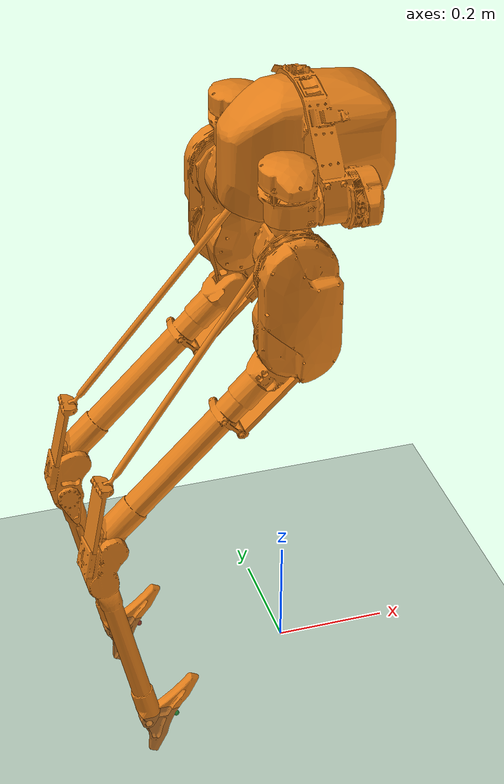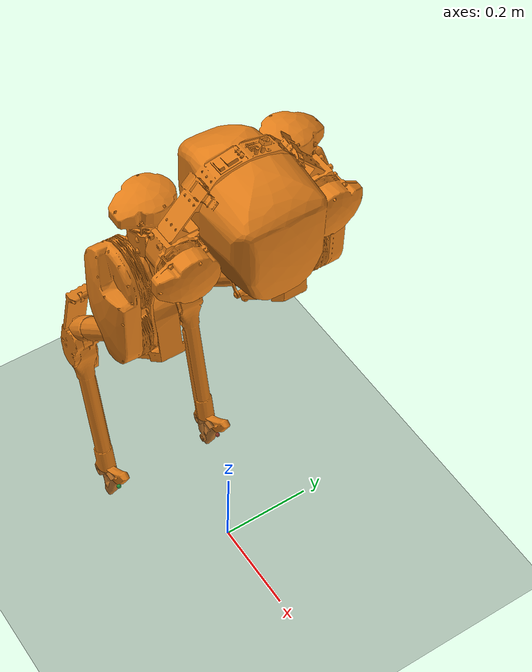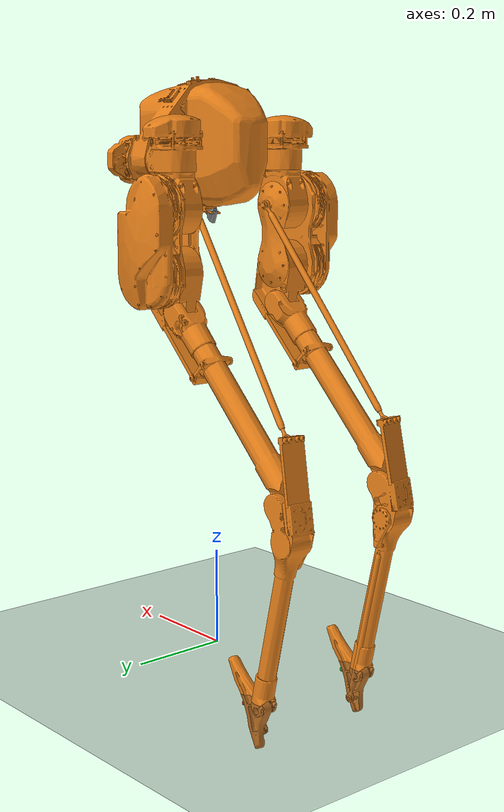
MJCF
<?xml version="1.0" encoding="UTF-8"?>
<mujoco model="cassie">
    <compiler inertiafromgeom="auto" angle="degree" eulerseq="zyx" meshdir="cassie-stl-meshes"/>
    <size nuser_actuator="1" nuser_sensor="1" nuser_geom="1"/>
    <option timestep="0.0005" iterations="50" solver="PGS" gravity="0 0 -9.81"/>
    <visual>
        <quality shadowsize="4096"/>
        <map znear="0.05"/>
    </visual>
    <default>
        <joint limited="true"/>
        <motor ctrllimited="true"/>
        <geom contype="0" conaffinity="0" condim="1" solref="0.005 1"/>
        <equality solref="0.002 1"/>
        <default class="cassie">
            <geom material="cassie"/>
        </default>
        <default class="collision">
            <geom material="collision" contype="1" user="2"/>
            <default class="collision-left">
                <geom contype="2" conaffinity="4"/>
            </default>
            <default class="collision-right">
                <geom contype="4" conaffinity="2"/>
            </default>
        </default>
        <default class="obstacle">
            <geom material="obstacle" condim="3" contype="8" conaffinity="15" user="1"/>
        </default>
    </default>
    <asset>
        <texture type="skybox" builtin="gradient" width="128" height="128" rgb1="0.4 0.6 0.8" rgb2="0 0 0"/>
        <texture type="2d" builtin="checker" width="512" height="512" rgb1="0.2 0.2 0.2" rgb2="0.3 0.3 0.3" name="plane"/>
        <material name="plane" reflectance="0" texture="plane" texrepeat="1 1" texuniform="true"/>
        <material name="cassie" rgba="0.9 0.5 0.1 1"/>
        <material name="collision" rgba="0.1 0.5 0.9 0"/>
        <material name="obstacle" rgba="0.2 0.6 0.2 1"/>
        <mesh name="cassie-pelvis" file="pelvis.stl"/>
        <mesh name="left-hip-roll" file="hip-roll.stl"/>
        <mesh name="left-hip-yaw" file="hip-yaw.stl"/>
        <mesh name="left-hip-pitch" file="hip-pitch.stl"/>
        <mesh name="left-achilles-rod" file="achilles-rod.stl"/>
        <mesh name="left-knee" file="knee.stl"/>
        <mesh name="left-knee-spring" file="knee-spring.stl"/>
        <mesh name="left-shin" file="shin.stl"/>
        <mesh name="left-tarsus" file="tarsus.stl"/>
        <mesh name="left-heel-spring" file="heel-spring.stl"/>
        <mesh name="left-foot-crank" file="foot-crank.stl"/>
        <mesh name="left-plantar-rod" file="plantar-rod.stl"/>
        <mesh name="left-foot" file="foot.stl"/>
        <mesh name="right-hip-roll" file="hip-roll.stl" scale="1 -1 1"/>
        <mesh name="right-hip-yaw" file="hip-yaw.stl" scale="1 -1 1"/>
        <mesh name="right-hip-pitch" file="hip-pitch.stl" scale="1 1 -1"/>
        <mesh name="right-achilles-rod" file="achilles-rod.stl" scale="1 1 -1"/>
        <mesh name="right-knee" file="knee.stl" scale="1 1 -1"/>
        <mesh name="right-knee-spring" file="knee-spring.stl" scale="1 1 -1"/>
        <mesh name="right-shin" file="shin.stl" scale="1 1 -1"/>
        <mesh name="right-tarsus" file="tarsus.stl" scale="1 1 -1"/>
        <mesh name="right-heel-spring" file="heel-spring.stl" scale="1 1 -1"/>
        <mesh name="right-foot-crank" file="foot-crank.stl" scale="1 1 -1"/>
        <mesh name="right-plantar-rod" file="plantar-rod.stl" scale="1 1 -1"/>
        <mesh name="right-foot" file="foot.stl" scale="1 1 -1"/>
    </asset>
    <worldbody>
        <geom name="floor" pos="0.001 0 0" size="100 100 .125" type="plane" material="plane" condim="3" conaffinity="15"/>
        <camera name="fixed" pos="3.5 -4 .8" zaxis="0 -1 0" mode="fixed"/>
        <light mode="trackcom" diffuse="0.2 0.2 0.2" pos="0 0 10" dir="0 0 -1" castshadow="true"/>
        <light directional="true" specular="0 0 0"/>
        <body name="cassie-pelvis" pos="0 0 1" childclass="cassie">
            <camera name="track" pos="0 -3 1" zaxis="0 -1 0.5" mode="track"/>
            <inertial pos="0.05066    0.000346     0.02841" mass="10.33" fullinertia="0.085821    0.049222     0.08626   1.276e-05 -0.00016022   -0.000414"/>
            <joint type="slide" axis="1 0 0" limited="false"/>
            <joint type="slide" axis="0 1 0" limited="false"/>
            <joint type="slide" axis="0 0 1" limited="false" ref="1.01"/>
            <joint type="ball" limited="false"/>
            <geom type="mesh" mesh="cassie-pelvis"/>
            <geom type="sphere" size="0.15" pos="0.02 0 0.02" class="collision"/>
            <site name="imu" size="0.01" pos="0.03155 0 -0.07996"/>
            <site name="range1" size="0.005 0.1 0.005" type="cylinder" rgba="0.5 0.5 0.5 1" fromto="0 0 -0.1 0.02452 0 -0.10488"/>
            <site name="range2" size="0.005 0.1 0.005" type="cylinder" rgba="0.5 0.5 0.5 1" fromto="0 0 -0.1 0.02031 0 -0.10957"/>
            <site name="range3" size="0.005 0.1 0.005" type="cylinder" rgba="0.5 0.5 0.5 1" fromto="0 0 -0.1 0.02079 0 -0.11389"/>
            <site name="range4" size="0.005 0.1 0.005" type="cylinder" rgba="0.5 0.5 0.5 1" fromto="0 0 -0.1 0.01768 0 -0.11768"/>
            <site name="range5" size="0.005 0.1 0.005" type="cylinder" rgba="0.5 0.5 0.5 1" fromto="0 0 -0.1 0.01389 0 -0.12079"/>
            <site name="range6" size="0.005 0.1 0.005" type="cylinder" rgba="0.5 0.5 0.5 1" fromto="0 0 -0.1 0.00957 0 -0.12310"/>
            <body name="left-hip-roll" pos="0.021 0.135 0" xyaxes="0 0 -1 0 1 0">
                <inertial pos="-0.01793 0.0001 -0.04428" mass="1.82" fullinertia="0.003431 0.003793 0.002135 -6.65e-07 -0.00084 3.99e-06"/>
                <joint name="left-hip-roll" type="hinge" range="-15 22.5" damping="1" armature="0.038125"/>
                <geom type="mesh" mesh="left-hip-roll"/>
                <body name="left-hip-yaw" pos="0 0 -0.07" xyaxes="0 0 1 0 1 0">
                    <inertial pos="0 -1e-05 -0.034277" mass="1.171" fullinertia="0.002443 0.002803 0.000842 -4e-08 2.462e-07 -2.71e-08"/>
                    <joint name="left-hip-yaw" type="hinge" range="-22.5 22.5" damping="1" armature="0.038125"/>
                    <geom type="mesh" mesh="left-hip-yaw"/>
                    <body name="left-hip-pitch" pos="0 0 -0.09" xyaxes="0 0 -1 1 0 0">
                        <inertial pos="0.05946 5e-05 -0.03581" mass="5.52" fullinertia="0.010898 0.029714 0.030257 -0.0002669 -5.721e-05 9.17e-06"/>
                        <joint name="left-hip-pitch" type="hinge" range="-50 80" damping="1" armature="0.09344"/>
                        <geom type="mesh" mesh="left-hip-pitch"/>
                        <geom type="capsule" size="0.08" fromto="0 0 -0.04 0.12 0 -0.0355" class="collision"/>
                        <body name="left-achilles-rod" pos="0 0 0.045" xyaxes="0.7922 -0.60599 -0.072096 0.60349 0.79547 -0.054922">
                            <inertial pos="0.24719 0 0" mass="0.39175" fullinertia="9.385e-06    0.011217     0.01122   -9.35e-08  -4.025e-08           0"/>
                            <joint name="left-achilles-rod" type="ball" limited="false" damping="0.01"/>
                            <geom type="mesh" mesh="left-achilles-rod"/>
                        </body>
                        <body name="left-knee" pos="0.12 0 0.0045" xyaxes="0.70711 -0.70711 0 0.70711 0.70711 0">
                            <inertial pos="0.023 0.03207 -0.002181" mass="1.8945" fullinertia="0.00344   0.0025837   0.0054093  -0.0009936 -0.00010212 -0.00013435"/>
                            <joint name="left-knee" type="hinge" ref="-45" range="-164 -37" damping="1" armature="0.09344"/>
                            <geom type="mesh" mesh="left-knee"/>
                            <body name="left-knee-spring" pos="0.06068 0.08241 0">
                                <inertial pos="0.0836 0.0034 0" mass="0.465" fullinertia="0.00013038   0.0010301  0.00091725  1.7175e-05           0           0"/>
                                <geom type="mesh" mesh="left-knee-spring"/>
                            </body>
                            <body name="left-shin" pos="0.06068 0.04741 0">
                                <inertial pos="0.18338 0.001169 0.0002123" mass="1.4425" fullinertia="0.00089848     0.03682    0.036768 -0.00052452   5.665e-05      -3e-07"/>
                                <geom type="mesh" mesh="left-shin"/>
                                <geom type="capsule" size="0.04" fromto="0 0 0 0.43476 0.02 0" class="collision-left"/>
                                <joint name="left-shin" type="hinge" range="-20 20" stiffness="1500" damping="20"/>
                                <body name="left-tarsus" pos="0.43476 0.02 0" xyaxes="0.52992 0.84805 0 -0.84805 0.52992 0">
                                    <inertial pos="0.11046 -0.03058 -0.00131" mass="1.955" fullinertia="0.00098095    0.033987    0.034185  0.00059128 -0.00012468  -1.205e-05"/>
                                    <joint name="left-tarsus" type="hinge" ref="58" range="50 170" damping="0.1"/>
                                    <geom type="mesh" mesh="left-tarsus"/>
                                    <geom type="capsule" size="0.04" fromto="-0.01269 -0.03059 0.00092 0.408 -0.04 0" class="collision-left"/>
                                    <body name="left-heel-spring" pos="-0.01269 -0.03059 0.00092" xyaxes="-0.91211 0.40829 0.036948 -0.40992 -0.90952 -0.068841">
                                        <inertial pos="0.081 0.0022 0" mass="0.315" fullinertia="7.3975e-05  0.00055577  0.00050175  1.7875e-05    -1.5e-06     2.5e-07"/>
                                        <joint name="left-heel-spring" type="hinge" limited="false" stiffness="1250" damping="20"/>
                                        <geom type="mesh" mesh="left-heel-spring"/>
                                    </body>
                                    <body name="left-foot-crank" pos="0.058 -0.034 0.02275">
                                        <inertial pos="0.00493 2e-05 -0.00215" mass="0.31525" fullinertia="6.7352e-05  0.00012405   0.0001584   -5.25e-09 -9.9058e-06  -2.725e-08"/>
                                        <joint name="left-foot-crank" type="hinge" range="-140 -30" damping="1"/>
                                        <geom type="mesh" mesh="left-foot-crank"/>
                                        <body name="left-plantar-rod" pos="0.055 0 -0.00791">
                                            <inertial pos="0.17792 0 0" mass="0.2965" fullinertia="6.9475e-06    0.004435   0.0044375   -5.85e-08  -2.025e-08           0"/>
                                            <joint name="left-plantar-rod" type="hinge" limited="false"/>
                                            <geom type="mesh" mesh="left-plantar-rod"/>
                                        </body>
                                    </body>
                                    <body name="left-foot" pos="0.408 -0.04 0">
                                        <inertial pos="0.00474 0.02748 -0.00014" mass="0.3745" fullinertia="0.0004347  0.00041982  0.00083153  0.00029535     3.4e-06      -1e-06"/>
                                        <joint name="left-foot" type="hinge" range="-140 -30" damping="1" armature="0.01225"/>
                                        <geom type="mesh" mesh="left-foot"/>
                                        <geom type="capsule" size="0.02" fromto="-0.052821 0.092622 0 0.069746 -0.010224 0" class="collision-left"/>
                                        <site name="left-foot-pt" type="sphere" pos="0.01965 0.05375 0" size="0.005" rgba="0.7 0.2 0.1 1"/>
                                    </body>
                                </body>
                            </body>
                        </body>
                    </body>
                </body>
            </body>
            <body name="right-hip-roll" pos="0.021 -0.135 0" xyaxes="0 0 -1 0 1 0">
                <inertial pos="-0.01793 0.0001 -0.04428" mass="1.82" fullinertia="0.003431 0.003793 0.002135 6.65e-07 -0.00084 -3.99e-06"/>
                <joint name="right-hip-roll" type="hinge" range="-22.5 15" damping="1" armature="0.038125"/>
                <geom type="mesh" mesh="right-hip-roll"/>
                <body name="right-hip-yaw" pos="0 0 -0.07" xyaxes="0 0 1 0 1 0">
                    <inertial pos="0 1e-05 -0.034277" mass="1.171" fullinertia="0.002443 0.002803 0.000842 4e-08 2.462e-07 2.71e-08"/>
                    <joint name="right-hip-yaw" type="hinge" range="-22.5 22.5" damping="1" armature="0.038125"/>
                    <geom type="mesh" mesh="right-hip-yaw"/>
                    <body name="right-hip-pitch" pos="0 0 -0.09" xyaxes="0 0 -1 1 0 0">
                        <inertial pos="0.05946 5e-05 0.03581" mass="5.52" fullinertia="0.010898 0.029714 0.030257 -0.0002669 5.721e-05 -9.17e-06"/>
                        <joint name="right-hip-pitch" type="hinge" range="-50 80" damping="1" armature="0.09344"/>
                        <geom type="mesh" mesh="right-hip-pitch"/>
                        <geom type="capsule" size="0.08" fromto="0 0 0.04 0.12 0 0.0355" class="collision"/>
                        <body name="right-achilles-rod" pos="0 0 -0.045" xyaxes="0.7922 -0.60599 0.072096 0.60349 0.79547 0.054922">
                            <inertial pos="0.24719 0 0" mass="0.39175" fullinertia="9.385e-06    0.011217     0.01122   -9.35e-08   4.025e-08           0"/>
                            <joint name="right-achilles-rod" type="ball" limited="false" damping="0.01"/>
                            <geom type="mesh" mesh="right-achilles-rod"/>
                        </body>
                        <body name="right-knee" pos="0.12 0 -0.0045" xyaxes="0.70711 -0.70711 0 0.70711 0.70711 0">
                            <inertial pos="0.023 0.03207 0.002181" mass="1.8945" fullinertia="0.00344   0.0025837   0.0054093  -0.0009936  0.00010212  0.00013435"/>
                            <joint name="right-knee" type="hinge" ref="-45" range="-164 -37" damping="1" armature="0.09344"/>
                            <geom type="mesh" mesh="right-knee"/>
                            <body name="right-knee-spring" pos="0.06068 0.08241 0">
                                <inertial pos="0.0836 0.0034 0" mass="0.465" fullinertia="0.00013038   0.0010301  0.00091725  1.7175e-05           0           0"/>
                                <geom type="mesh" mesh="right-knee-spring"/>
                            </body>
                            <body name="right-shin" pos="0.06068 0.04741 0">
                                <inertial pos="0.18338 0.001169 -0.0002123" mass="1.4425" fullinertia="0.00089848     0.03682    0.036768 -0.00052452  -5.665e-05       3e-07"/>
                                <geom type="mesh" mesh="right-shin"/>
                                <geom type="capsule" size="0.04" fromto="0 0 0 0.43476 0.02 0" class="collision-right"/>
                                <joint name="right-shin" type="hinge" range="-20 20" stiffness="1500" damping="20"/>
                                <body name="right-tarsus" pos="0.43476 0.02 0" xyaxes="0.52992 0.84805 0 -0.84805 0.52992 0">
                                    <inertial pos="0.11046 -0.03058 0.00131" mass="1.955" fullinertia="0.00098095    0.033987    0.034185  0.00059128  0.00012468   1.205e-05"/>
                                    <joint name="right-tarsus" type="hinge" ref="58" range="50 170" damping="0.1"/>
                                    <geom type="mesh" mesh="right-tarsus"/>
                                    <geom type="capsule" size="0.04" fromto="-0.01269 -0.03059 -0.00092 0.408 -0.04 0" class="collision-right"/>
                                    <body name="right-heel-spring" pos="-0.01269 -0.03059 -0.00092" xyaxes="-0.91211 0.40829 -0.036948 -0.40992 -0.90952 0.068841">
                                        <inertial pos="0.081 0.0022 0" mass="0.315" fullinertia="7.3975e-05  0.00055577  0.00050175  1.7875e-05     1.5e-06    -2.5e-07"/>
                                        <joint name="right-heel-spring" type="hinge" limited="false" stiffness="1250" damping="20"/>
                                        <geom type="mesh" mesh="right-heel-spring"/>
                                    </body>
                                    <body name="right-foot-crank" pos="0.058 -0.034 -0.02275">
                                        <inertial pos="0.00493 2e-05 0.00215" mass="0.31525" fullinertia="6.7352e-05  0.00012405   0.0001584   -5.25e-09  9.9058e-06   2.725e-08"/>
                                        <joint name="right-foot-crank" type="hinge" range="-140 -30" damping="1"/>
                                        <geom type="mesh" mesh="right-foot-crank"/>
                                        <body name="right-plantar-rod" pos="0.055 0 0.00791">
                                            <inertial pos="0.17792 0 0" mass="0.2965" fullinertia="6.9475e-06    0.004435   0.0044375   -5.85e-08   2.025e-08           0"/>
                                            <joint name="right-plantar-rod" type="hinge" limited="false"/>
                                            <geom type="mesh" mesh="right-plantar-rod"/>
                                        </body>
                                    </body>
                                    <body name="right-foot" pos="0.408 -0.04 0">
                                        <inertial pos="0.00474 0.02748 0.00014" mass="0.3745" fullinertia="0.0004347  0.00041982  0.00083153  0.00029535    -3.4e-06       1e-06"/>
                                        <joint name="right-foot" type="hinge" range="-140 -30" damping="1" armature="0.01225"/>
                                        <geom type="mesh" mesh="right-foot"/>
                                        <geom type="capsule" size="0.02" fromto="-0.052821 0.092622 0 0.069746 -0.010224 0" class="collision-right"/>
                                        <site name="right-foot-pt" type="sphere" pos="0.01965 0.05375 0" size="0.005" rgba="0.1 0.7 0.2 1"/>
                                    </body>
                                </body>
                            </body>
                        </body>
                    </body>
                </body>
            </body>
        </body>
    </worldbody>
    <equality>
        <connect name="left-plantar-rod-eq" body1="left-plantar-rod" body2="left-foot" anchor="0.35012 0 0"/>
        <connect name="left-achilles-rod-eq" body1="left-achilles-rod" body2="left-heel-spring" anchor="0.5012 0 0"/>
        <connect name="right-plantar-rod-eq" body1="right-plantar-rod" body2="right-foot" anchor="0.35012 0 0"/>
        <connect name="right-achilles-rod-eq" body1="right-achilles-rod" body2="right-heel-spring" anchor="0.5012 0 0"/>
    </equality>
    <equality>
        <joint name="rigid-left-shin" joint1="left-shin" polycoef="0 0 0 0 0"/>
        <joint name="rigid-right-shin" joint1="right-shin" polycoef="0 0 0 0 0"/>
        <joint name="rigid-left-heel-spring" joint1="left-heel-spring" polycoef="0 0 0 0 0"/>
        <joint name="rigid-right-heel-spring" joint1="right-heel-spring" polycoef="0 0 0 0 0"/>
    </equality>
    <actuator>
        <motor name="left-hip-roll" joint="left-hip-roll" gear="25" ctrllimited="true" ctrlrange="-4.5 4.5" user="2900"/>
        <motor name="left-hip-yaw" joint="left-hip-yaw" gear="25" ctrllimited="true" ctrlrange="-4.5 4.5" user="2900"/>
        <motor name="left-hip-pitch" joint="left-hip-pitch" gear="16" ctrllimited="true" ctrlrange="-12.2 12.2" user="1300"/>
        <motor name="left-knee" joint="left-knee" gear="16" ctrllimited="true" ctrlrange="-12.2 12.2" user="1300"/>
        <motor name="left-foot" joint="left-foot" gear="50" ctrllimited="true" ctrlrange="-0.9 0.9" user="5500"/>
        <motor name="right-hip-roll" joint="right-hip-roll" gear="25" ctrllimited="true" ctrlrange="-4.5 4.5" user="2900"/>
        <motor name="right-hip-yaw" joint="right-hip-yaw" gear="25" ctrllimited="true" ctrlrange="-4.5 4.5" user="2900"/>
        <motor name="right-hip-pitch" joint="right-hip-pitch" gear="16" ctrllimited="true" ctrlrange="-12.2 12.2" user="1300"/>
        <motor name="right-knee" joint="right-knee" gear="16" ctrllimited="true" ctrlrange="-12.2 12.2" user="1300"/>
        <motor name="right-foot" joint="right-foot" gear="50" ctrllimited="true" ctrlrange="-0.9 0.9" user="5500"/>
    </actuator>
  <sensor>
    <!-- User parameter is the number of absolute encoder bits -->
    <actuatorpos name='left-hip-roll-input'  actuator='left-hip-roll'  user='13'/>
    <actuatorpos name='left-hip-yaw-input'   actuator='left-hip-yaw'   user='13'/>
    <actuatorpos name='left-hip-pitch-input' actuator='left-hip-pitch' user='13'/>
    <actuatorpos name='left-knee-input'      actuator='left-knee'      user='13'/>
    <actuatorpos name='left-foot-input'      actuator='left-foot'      user='18'/>

    <jointpos    name='left-shin-output'     joint='left-shin'         user='18' noise='2e-4'/>
    <jointpos    name='left-tarsus-output'   joint='left-tarsus'       user='18' noise='2e-4'/>
    <jointpos    name='left-foot-output'     joint='left-foot'         user='13'/>
    <actuatorpos name='right-hip-roll-input'  actuator='right-hip-roll'   user='13'/>
    <actuatorpos name='right-hip-yaw-input'   actuator='right-hip-yaw'    user='13'/>
    <actuatorpos name='right-hip-pitch-input' actuator='right-hip-pitch'  user='13'/>
    <actuatorpos name='right-knee-input'      actuator='right-knee'       user='13'/>
    <actuatorpos name='right-foot-input'      actuator='right-foot'       user='18'/>

    <jointpos    name='right-shin-output'     joint='right-shin'          user='18' noise='2e-4'/>
    <jointpos    name='right-tarsus-output'   joint='right-tarsus'        user='18' noise='2e-4'/>
    <jointpos    name='right-foot-output'     joint='right-foot'          user='13'/>

    <framequat     name='pelvis-orientation' objtype='site' objname='imu'/>
    <gyro          name='pelvis-angular-velocity'    site='imu' noise='5e-4' cutoff='34.9'/>
    <accelerometer name='pelvis-linear-acceleration' site='imu' noise='1e-2' cutoff='157'/>
    <magnetometer  name='pelvis-magnetometer'        site='imu'/>
  </sensor>
</mujoco>
